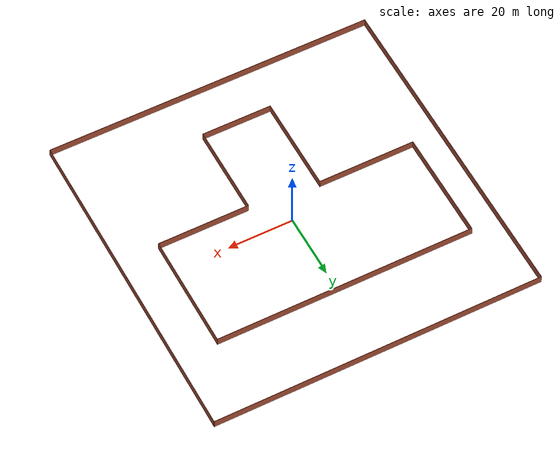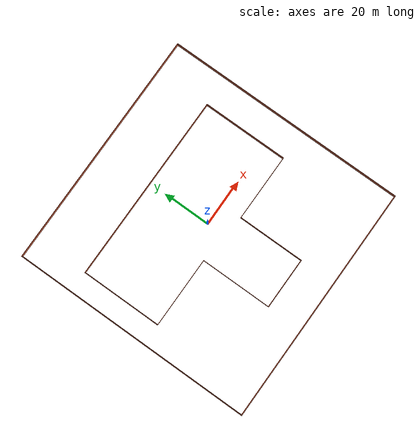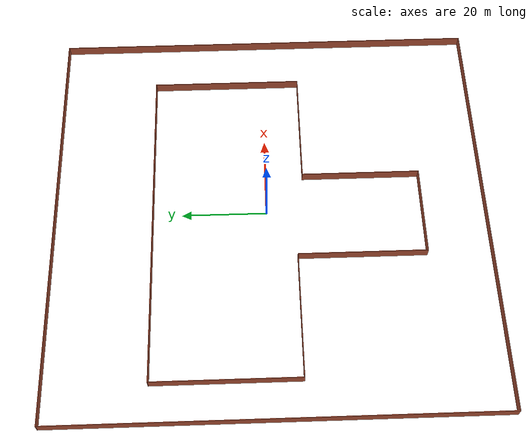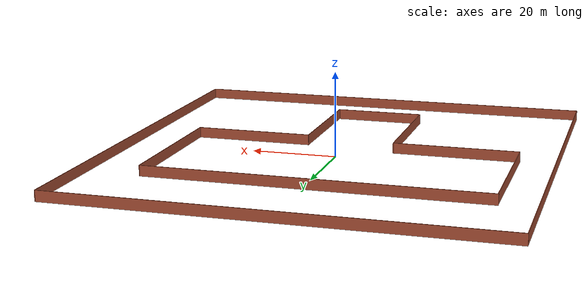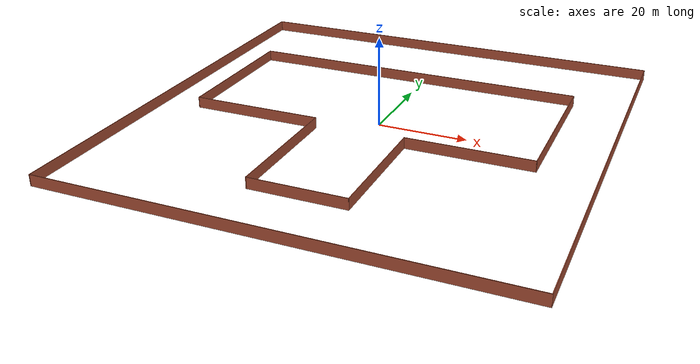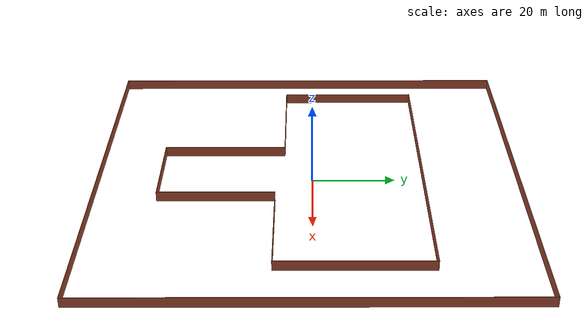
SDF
<sdf version="1.5">
 <world name="default">
  <scene><grid>false</grid></scene>
  <include><uri>model://sun</uri><pose>1.5 -30 100 0 0 0</pose></include>
  <model name="closed_world">
   <pose>-0.448933 -0.924763 0 0 -0 0</pose>
   <link name="Wall_36">
    <collision name="Wall_36_Collision">
     <geometry><box><size>101.5 0.15 2.5</size></box></geometry>
     <pose>0 0 1.25 0 -0 0</pose>
    </collision>
    <visual name="Wall_36_Visual">
     <pose>0 0 1.25 0 -0 0</pose>
     <geometry><box><size>101.5 0.15 2.5</size></box></geometry>
     <material>
      <script><uri>file://media/materials/scripts/gazebo.material</uri><name>Gazebo/Bricks</name></script>
      <ambient>1 1 1 1</ambient>
     </material>
     <meta><layer>0</layer></meta>
    </visual>
    <pose>50.175 0 0 0 -0 1.5708</pose>
   </link>
   <link name="Wall_37">
    <collision name="Wall_37_Collision">
     <geometry><box><size>100.5 0.15 2.5</size></box></geometry>
     <pose>0 0 1.25 0 -0 0</pose>
    </collision>
    <visual name="Wall_37_Visual">
     <pose>0 0 1.25 0 -0 0</pose>
     <geometry><box><size>100.5 0.15 2.5</size></box></geometry>
     <material>
      <script><uri>file://media/materials/scripts/gazebo.material</uri><name>Gazebo/Bricks</name></script>
      <ambient>1 1 1 1</ambient>
     </material>
     <meta><layer>0</layer></meta>
    </visual>
    <pose>1e-06 50.675 0 0 -0 3.14159</pose>
   </link>
   <link name="Wall_38">
    <collision name="Wall_38_Collision">
     <geometry><box><size>101.5 0.15 2.5</size></box></geometry>
     <pose>0 0 1.25 0 -0 0</pose>
    </collision>
    <visual name="Wall_38_Visual">
     <pose>0 0 1.25 0 -0 0</pose>
     <geometry><box><size>101.5 0.15 2.5</size></box></geometry>
     <material>
      <script><uri>file://media/materials/scripts/gazebo.material</uri><name>Gazebo/Bricks</name></script>
      <ambient>1 1 1 1</ambient>
     </material>
     <meta><layer>0</layer></meta>
    </visual>
    <pose>-50.175 0 0 0 -0 -1.5708</pose>
   </link>
   <link name="Wall_39">
    <collision name="Wall_39_Collision">
     <geometry><box><size>100.5 0.15 2.5</size></box></geometry>
     <pose>0 0 1.25 0 -0 0</pose>
    </collision>
    <visual name="Wall_39_Visual">
     <pose>0 0 1.25 0 -0 0</pose>
     <geometry><box><size>100.5 0.15 2.5</size></box></geometry>
     <material>
      <script><uri>file://media/materials/scripts/gazebo.material</uri><name>Gazebo/Bricks</name></script>
      <ambient>1 1 1 1</ambient>
     </material>
     <meta><layer>0</layer></meta>
    </visual>
    <pose>1e-06 -50.675 0 0 -0 0</pose>
   </link>
   <static>1</static>
  </model>
  <model name="small_town">
   <pose>-2.37249 -4.91401 0 0 -0 0</pose>
   <link name="Wall_33">
    <collision name="Wall_33_Collision">
     <geometry><box><size>33.75 0.15 2.5</size></box></geometry>
     <pose>0 0 1.25 0 -0 0</pose>
    </collision>
    <visual name="Wall_33_Visual">
     <pose>0 0 1.25 0 -0 0</pose>
     <geometry><box><size>33.75 0.15 2.5</size></box></geometry>
     <material>
      <script><uri>file://media/materials/scripts/gazebo.material</uri><name>Gazebo/Bricks</name></script>
      <ambient>1 1 1 1</ambient>
     </material>
     <meta><layer>0</layer></meta>
    </visual>
    <pose>-39.375 14.925 0 0 -0 -1.5708</pose>
   </link>
   <link name="Wall_34">
    <collision name="Wall_34_Collision">
     <geometry><box><size>29.75 0.15 2.5</size></box></geometry>
     <pose>0 0 1.25 0 -0 0</pose>
    </collision>
    <visual name="Wall_34_Visual">
     <pose>0 0 1.25 0 -0 0</pose>
     <geometry><box><size>29.75 0.15 2.5</size></box></geometry>
     <material>
      <script><uri>file://media/materials/scripts/gazebo.material</uri><name>Gazebo/Bricks</name></script>
      <ambient>1 1 1 1</ambient>
     </material>
     <meta><layer>0</layer></meta>
    </visual>
    <pose>-24.575 -1.875 0 0 -0 0</pose>
   </link>
   <link name="Wall_35">
    <collision name="Wall_35_Collision">
     <geometry><box><size>30 0.15 2.5</size></box></geometry>
     <pose>0 0 1.25 0 -0 0</pose>
    </collision>
    <visual name="Wall_35_Visual">
     <pose>0 0 1.25 0 -0 0</pose>
     <geometry><box><size>30 0.15 2.5</size></box></geometry>
     <material>
      <script><uri>file://media/materials/scripts/gazebo.material</uri><name>Gazebo/Bricks</name></script>
      <ambient>1 1 1 1</ambient>
     </material>
     <meta><layer>0</layer></meta>
    </visual>
    <pose>-9.775 -16.8 0 0 -0 -1.5708</pose>
   </link>
   <link name="Wall_36">
    <collision name="Wall_36_Collision">
     <geometry><box><size>21.5 0.15 2.5</size></box></geometry>
     <pose>0 0 1.25 0 -0 0</pose>
    </collision>
    <visual name="Wall_36_Visual">
     <pose>0 0 1.25 0 -0 0</pose>
     <geometry><box><size>21.5 0.15 2.5</size></box></geometry>
     <material>
      <script><uri>file://media/materials/scripts/gazebo.material</uri><name>Gazebo/Bricks</name></script>
      <ambient>1 1 1 1</ambient>
     </material>
     <meta><layer>0</layer></meta>
    </visual>
    <pose>0.899999 -31.725 0 0 -0 0</pose>
   </link>
   <link name="Wall_37">
    <collision name="Wall_37_Collision">
     <geometry><box><size>28 0.15 2.5</size></box></geometry>
     <pose>0 0 1.25 0 -0 0</pose>
    </collision>
    <visual name="Wall_37_Visual">
     <pose>0 0 1.25 0 -0 0</pose>
     <geometry><box><size>28 0.15 2.5</size></box></geometry>
     <material>
      <script><uri>file://media/materials/scripts/gazebo.material</uri><name>Gazebo/Bricks</name></script>
      <ambient>1 1 1 1</ambient>
     </material>
     <meta><layer>0</layer></meta>
    </visual>
    <pose>11.575 -17.8 0 0 -0 1.5708</pose>
   </link>
   <link name="Wall_38">
    <collision name="Wall_38_Collision">
     <geometry><box><size>28 0.15 2.5</size></box></geometry>
     <pose>0 0 1.25 0 -0 0</pose>
    </collision>
    <visual name="Wall_38_Visual">
     <pose>0 0 1.25 0 -0 0</pose>
     <geometry><box><size>28 0.15 2.5</size></box></geometry>
     <material>
      <script><uri>file://media/materials/scripts/gazebo.material</uri><name>Gazebo/Bricks</name></script>
      <ambient>1 1 1 1</ambient>
     </material>
     <meta><layer>0</layer></meta>
    </visual>
    <pose>25.5 -3.875 0 0 -0 0</pose>
   </link>
   <link name="Wall_39">
    <collision name="Wall_39_Collision">
     <geometry><box><size>35.75 0.15 2.5</size></box></geometry>
     <pose>0 0 1.25 0 -0 0</pose>
    </collision>
    <visual name="Wall_39_Visual">
     <pose>0 0 1.25 0 -0 0</pose>
     <geometry><box><size>35.75 0.15 2.5</size></box></geometry>
     <material>
      <script><uri>file://media/materials/scripts/gazebo.material</uri><name>Gazebo/Bricks</name></script>
      <ambient>1 1 1 1</ambient>
     </material>
     <meta><layer>0</layer></meta>
    </visual>
    <pose>39.425 13.925 0 0 -0 1.5708</pose>
   </link>
   <link name="Wall_40">
    <collision name="Wall_40_Collision">
     <geometry><box><size>79 0.15 2.5</size></box></geometry>
     <pose>0 0 1.25 0 -0 0</pose>
    </collision>
    <visual name="Wall_40_Visual">
     <pose>0 0 1.25 0 -0 0</pose>
     <geometry><box><size>79 0.15 2.5</size></box></geometry>
     <material>
      <script><uri>file://media/materials/scripts/gazebo.material</uri><name>Gazebo/Bricks</name></script>
      <ambient>1 1 1 1</ambient>
     </material>
     <meta><layer>0</layer></meta>
    </visual>
    <pose>-1e-06 31.725 0 0 -0 3.14159</pose>
   </link>
   <static>1</static>
  </model>
 </world>
</sdf>
